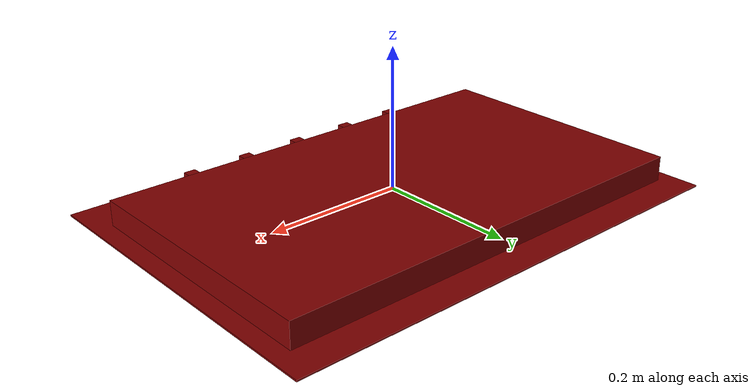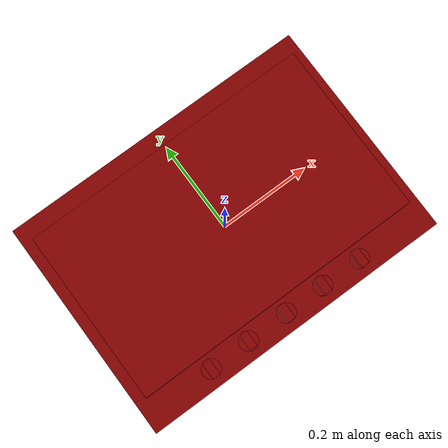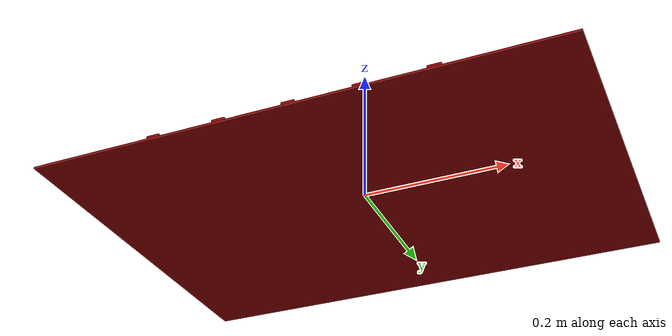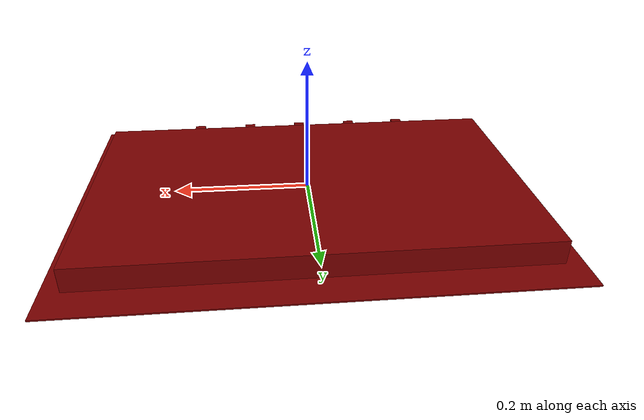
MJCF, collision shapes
<?xml version='1.0' encoding='UTF-8'?>
<mujoco model="model">
  <option timestep="0.002" gravity="0.0 0.0 -9.81"/>
  <compiler angle="radian"/>
  <asset>
    <mesh file="visuals/knob_center.obj" name="knob_center_vis"/>
    <mesh file="visuals/knob_front_left.obj" name="knob_front_left_vis"/>
    <mesh file="visuals/knob_front_right.obj" name="knob_front_right_vis"/>
    <mesh file="visuals/knob_rear_left.obj" name="knob_rear_left_vis"/>
    <mesh file="visuals/knob_rear_right.obj" name="knob_rear_right_vis"/>
    <mesh file="visuals/Body001.obj" name="Body001_vis"/>
    <mesh file="visuals/Body002.obj" name="Body002_vis"/>
    <texture file="visuals/T_BC001.png" name="Body001_material" type="2d"/>
    <material name="Body001_material" rgba="1 1 1 1.0" texture="Body001_material" shininess="0.1" specular="5"/>
    <texture file="visuals/T_BC001.png" name="knob_center_material" type="2d"/>
    <material name="knob_center_material" rgba="1 1 1 1.0" texture="knob_center_material" shininess="0.1" specular="5"/>
    <texture file="visuals/T_BC001.png" name="knob_front_left_material" type="2d"/>
    <material name="knob_front_left_material" rgba="1 1 1 1.0" texture="knob_front_left_material" shininess="0.1" specular="5"/>
    <texture file="visuals/T_BC001.png" name="knob_front_right_material" type="2d"/>
    <material name="knob_front_right_material" rgba="1 1 1 1.0" texture="knob_front_right_material" shininess="0.1" specular="5"/>
    <texture file="visuals/T_BC001.png" name="knob_rear_left_material" type="2d"/>
    <material name="knob_rear_left_material" rgba="1 1 1 1.0" texture="knob_rear_left_material" shininess="0.1" specular="5"/>
    <texture file="visuals/T_BC001.png" name="knob_rear_right_material" type="2d"/>
    <material name="knob_rear_right_material" rgba="1 1 1 1.0" texture="knob_rear_right_material" shininess="0.1" specular="5"/>
    <texture file="visuals/T_BC001.png" name="Body002_material" type="2d"/>
    <material name="Body002_material" rgba="1 1 1 1.0" texture="Body002_material" shininess="0.1" specular="5"/>
  </asset>
  <default>
    <default class="visual">
      <geom conaffinity="0" contype="0" group="1" type="mesh"/>
    </default>
    <default class="collision">
      <geom group="0" rgba="0.5 0 0 0.5"/>
    </default>
    <default class="spawn">
      <geom group="0" rgba="1 1 1 0.5" contype="0" conaffinity="0"/>
      <site group="0" rgba="1 1 1 0.5"/>
    </default>
    <default class="region">
      <geom group="1" conaffinity="0" contype="0" rgba="0 1 0 0"/>
    </default>
  </default>
  <worldbody>
    <body>
      <body name="object">
        <geom mesh="Body001_vis" type="mesh" solimp="0.998 0.998 0.001" solref="0.001 1" friction="0.95 0.3 0.1" class="visual" material="Body001_material"/>
        <geom class="collision" type="box" pos="0.00000000 -0.00010153 -0.01816724" size="0.34981995820999146 0.24872340261936188 0.0011073341593146324" quat="1.0 0.0 0.0 0.0"/>
        <geom class="collision" type="box" pos="0.00000000 0.01026997 0.00133314" size="0.3235701620578766 0.1927124410867691 0.017985282465815544" quat="1.0 0.0 0.0 0.0"/>
        <body name="knob_center">
          <joint axis="0.0 0.0 1.0" pos="-0.00478125 -0.21114622 -0.00770869" limited="true" name="knob_center_joint" range="0.0 3.6651914291880923" type="hinge" damping="0.2" armature="0.01" frictionloss="1"/>
          <geom mesh="knob_center_vis" type="mesh" solimp="0.998 0.998 0.001" solref="0.001 1" friction="0.95 0.3 0.1" class="visual" material="knob_center_material"/>
          <geom class="collision" type="cylinder" pos="-0.00417768 -0.21136595 -0.01422867" size="0.020649556070566177 0.002601386047899723" quat="1.0 0.0 0.0 0.0" friction="100 0.5 0.01"/>
          <geom class="collision" type="box" pos="-0.00468463 -0.21092272 -0.00553766" size="0.008751469664275646 0.018220698460936546 0.008115698583424091" quat="1.0 0.0 0.0 0.0" name="knob_center_main" friction="100 0.5 0.01"/>
        </body>
        <body name="knob_front_left">
          <joint axis="0.0 0.0 1.0" pos="-0.18965204 -0.21114622 -0.00770869" limited="true" name="knob_front_left_joint" range="0.0 3.6651914291880923" type="hinge" damping="0.2" armature="0.01" frictionloss="1"/>
          <geom mesh="knob_front_left_vis" type="mesh" solimp="0.998 0.998 0.001" solref="0.001 1" friction="0.95 0.3 0.1" class="visual" material="knob_front_left_material"/>
          <geom class="collision" type="cylinder" pos="-0.18916759 -0.21136595 -0.01422867" size="0.020649556070566177 0.002601386047899723" quat="1.0 0.0 0.0 0.0" friction="100 0.5 0.01"/>
          <geom class="collision" type="box" pos="-0.18967454 -0.21092272 -0.00553766" size="0.008751465007662773 0.01822069101035595 0.008115696720778942" quat="1.0 0.0 0.0 0.0" name="knob_front_left_main" friction="100 0.5 0.01"/>
        </body>
        <body name="knob_front_right">
          <joint axis="0.0 0.0 1.0" pos="0.17955649 -0.21114622 -0.00770869" limited="true" name="knob_front_right_joint" range="0.0 3.6651914291880923" type="hinge" damping="0.2" armature="0.01" frictionloss="1"/>
          <geom mesh="knob_front_right_vis" type="mesh" solimp="0.998 0.998 0.001" solref="0.001 1" friction="0.95 0.3 0.1" class="visual" material="knob_front_right_material"/>
          <geom class="collision" type="cylinder" pos="0.17938270 -0.21136595 -0.01422867" size="0.020649556070566177 0.002601386047899723" quat="1.0 0.0 0.0 0.0" friction="100 0.5 0.01"/>
          <geom class="collision" type="box" pos="0.17887574 -0.21092272 -0.00553766" size="0.008751473389565945 0.018220707774162292 0.00811570044606924" quat="1.0 0.0 0.0 0.0" name="knob_front_right_main" friction="100 0.5 0.01"/>
        </body>
        <body name="knob_rear_left">
          <joint axis="0.0 0.0 1.0" pos="-0.09739432 -0.21114622 -0.00770869" limited="true" name="knob_rear_left_joint" range="0.0 3.6651914291880923" type="hinge" damping="0.2" armature="0.01" frictionloss="1"/>
          <geom mesh="knob_rear_left_vis" type="mesh" solimp="0.998 0.998 0.001" solref="0.001 1" friction="0.95 0.3 0.1" class="visual" material="knob_rear_left_material"/>
          <geom class="collision" type="cylinder" pos="-0.09775850 -0.21136595 -0.01422867" size="0.020649556070566177 0.002601386047899723" quat="1.0 0.0 0.0 0.0" friction="100 0.5 0.01"/>
          <geom class="collision" type="box" pos="-0.09805980 -0.21092272 -0.00553766" size="0.008751466870307922 0.018220694735646248 0.008115697652101517" quat="1.0 0.0 0.0 0.0" name="knob_rear_left_main" friction="100 0.5 0.01"/>
        </body>
        <body name="knob_rear_right">
          <joint axis="0.0 0.0 1.0" pos="0.08747646 -0.21114622 -0.00770869" limited="true" name="knob_rear_right_joint" range="0.0 3.6651914291880923" type="hinge" damping="0.2" armature="0.01" frictionloss="1"/>
          <geom mesh="knob_rear_right_vis" type="mesh" solimp="0.998 0.998 0.001" solref="0.001 1" friction="0.95 0.3 0.1" class="visual" material="knob_rear_right_material"/>
          <geom class="collision" type="cylinder" pos="0.08741695 -0.21136595 -0.01422867" size="0.020649556070566177 0.002601386047899723" quat="1.0 0.0 0.0 0.0" friction="100 0.5 0.01"/>
          <geom class="collision" type="box" pos="0.08691000 -0.21092272 -0.00553766" size="0.008751471526920795 0.018220702186226845 0.008115699514746666" quat="1.0 0.0 0.0 0.0" name="knob_rear_right_main" friction="100 0.5 0.01"/>
        </body>
        <body name="Body002">
          <geom mesh="Body002_vis" type="mesh" solimp="0.998 0.998 0.001" solref="0.001 1" friction="0.95 0.3 0.1" class="visual" material="Body002_material"/>
        </body>
        <site type="cylinder" rgba="0.3 0.4 1 0.5" size="0.037646256387233734 0.005082457792013884" pos="0.20518821 0.11482580 0.00383751" name="burner_on_rear_right"/>
        <site type="cylinder" rgba="0.3 0.4 1 0.5" size="0.050764523446559906 0.005099749658256769" pos="-0.20516407 0.11541545 0.00399050" name="burner_on_rear_left"/>
        <site type="cylinder" rgba="0.3 0.4 1 0.5" size="0.03772476688027382 0.0049089533276855946" pos="0.23527089 -0.09508251 0.00404993" name="burner_on_front_right"/>
        <site type="cylinder" rgba="0.3 0.4 1 0.5" size="0.02843535505235195 0.004997585900127888" pos="-0.23370618 -0.09594858 0.00401987" name="burner_on_front_left"/>
        <site type="cylinder" rgba="0.3 0.4 1 0.5" size="0.06542050093412399 0.007380207069218159" pos="-0.00000924 -0.00022010 -0.00102885" name="burner_on_center"/>
        <site type="cylinder" rgba="0.5 0 0 0" size="0.03764626383781433 5.001212048227899e-05" pos="0.20518821 0.11482580 0.01937028" name="burner_rear_right_place_site"/>
        <site type="cylinder" rgba="0.5 0 0 0" size="0.0507645308971405 5.001212048227899e-05" pos="-0.20516407 0.11541545 0.01937028" name="burner_rear_left_place_site"/>
        <site type="cylinder" rgba="0.5 0 0 0" size="0.03772477060556412 5.001212048227899e-05" pos="0.23527089 -0.09508251 0.01937028" name="burner_front_right_place_site"/>
        <site type="cylinder" rgba="0.5 0 0 0" size="0.028435349464416504 5.001212048227899e-05" pos="-0.23370618 -0.09594858 0.01937028" name="burner_front_left_place_site"/>
        <site type="cylinder" rgba="0.5 0 0 0" size="0.06542050838470459 5.001212048227899e-05" pos="-0.00000924 -0.00022011 0.01937028" name="burner_center_place_site"/>
        <geom class="region" name="reg_main" type="box" pos="4.999999997368221e-09 0.0 -0.01780747" size="0.350999995 0.251 0.0024949100000000004"/>
      </body>
    </body>
  </worldbody>
  <actuator>
    <motor name="knob_center_joint_actuator" joint="knob_center_joint" gear="10"/>
    <motor name="knob_front_left_joint_actuator" joint="knob_front_left_joint" gear="10"/>
    <motor name="knob_front_right_joint_actuator" joint="knob_front_right_joint" gear="10"/>
    <motor name="knob_rear_left_joint_actuator" joint="knob_rear_left_joint" gear="10"/>
    <motor name="knob_rear_right_joint_actuator" joint="knob_rear_right_joint" gear="10"/>
  </actuator>
</mujoco>
